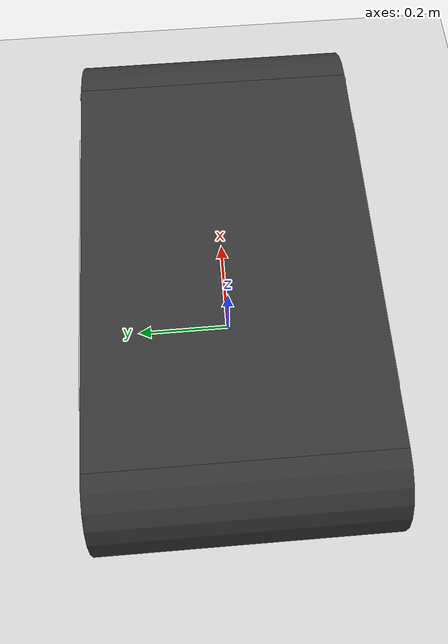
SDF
<?xml version="1.0" ?>
<sdf version="1.6">
    <world name="default">
        <include>
            <uri>model://ground_plane</uri>
        </include>

        <!-- Global light source -->
        <include>
            <uri>model://sun</uri>
        </include>

        <!-- Example track -->
        <include>
            <uri>model://example_track</uri>
            <pose>0 0 0.3 0 0 0</pose>
        </include>

        <!-- Rigid anchor for the track -->

        <!-- camera angle -->
        <gui fullscreen='0'>
            <camera name='user_camera'>
                <pose>2.0 -1.5 1.0 0.0 0.3 2.45</pose>
                <view_controller>orbit</view_controller>
            </camera>
        </gui>
    </world>
</sdf>

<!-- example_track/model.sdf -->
<sdf version='1.6'>
  <model name='example_track'>
    <link name='body'>
      <pose frame=''>0 0 0 0 -0 0</pose>
      <inertial>
        <pose frame=''>-0.058333 0 0 0 -0 0</pose>
        <mass>1.2</mass>
        <inertia>
          <ixx>0.0296633</ixx>
          <ixy>0</ixy>
          <ixz>0</ixz>
          <iyy>0.0452233</iyy>
          <iyz>0</iyz>
          <izz>0.06758</izz>
        </inertia>
      </inertial>
      <collision name='body_collision'>
        <pose frame=''>0 0 0 0 -0 0</pose>
        <geometry>
          <box>
            <size>0.51 0.5 0.2</size>
          </box>
        </geometry>
      </collision>
      <collision name='body_fixed_joint_lump__idler_collision_1'>
        <pose frame=''>-0.35 0 0 1.5708 -0 0</pose>
        <geometry>
          <cylinder>
            <length>0.51</length>
            <radius>0.08</radius>
          </cylinder>
        </geometry>
      </collision>
      <visual name='body_visual'>
        <pose frame=''>0 0 0 0 -0 0</pose>
        <geometry>
          <box>
            <size>0.5 0.51 0.2</size>
          </box>
        </geometry>
      </visual>
      <visual name='body_fixed_joint_lump__idler_visual_1'>
        <pose frame=''>-0.35 0 0 1.5708 -0 0</pose>
        <geometry>
          <cylinder>
            <length>0.51</length>
            <radius>0.08</radius>
          </cylinder>
        </geometry>
      </visual>
    </link>
    <link name='sprocket'>
      <pose frame=''>0.35 0 0 0 -0 0</pose>
      <inertial>
        <pose frame=''>0 0 0 0 -0 0</pose>
        <mass>0.2</mass>
        <inertia>
          <ixx>0.004655</ixx>
          <ixy>0</ixy>
          <ixz>0</ixz>
          <iyy>0.00064</iyy>
          <iyz>0</iyz>
          <izz>0.004655</izz>
        </inertia>
      </inertial>
      <collision name='sprocket_collision'>
        <pose frame=''>0 0 0 1.5708 -0 0</pose>
        <geometry>
          <cylinder>
            <length>0.51</length>
            <radius>0.08</radius>
          </cylinder>
        </geometry>
      </collision>
      <visual name='sprocket_visual'>
        <pose frame=''>0 0 0 1.5708 -0 0</pose>
        <geometry>
          <cylinder>
            <length>0.51</length>
            <radius>0.08</radius>
          </cylinder>
        </geometry>
      </visual>
      <visual name='sprocket_visual_1'>
        <pose frame=''>0 0 0 0 -0 0</pose>
        <geometry>
          <box>
            <size>0.01 0.51 0.2</size>
          </box>
        </geometry>
      </visual>
      <visual name='sprocket_visual_2'>
        <pose frame=''>0 0 0 0 -0 0</pose>
        <geometry>
          <box>
            <size>0.2 0.51 0.01</size>
          </box>
        </geometry>
      </visual>
    </link>
    <joint name='sprocket_axle' type='revolute'>
      <child>sprocket</child>
      <parent>body</parent>
      <axis>
        <xyz>0 1 0</xyz>
        <limit>
          <lower>-1e+16</lower>
          <upper>1e+16</upper>
        </limit>
        <dynamics>
          <spring_reference>0</spring_reference>
          <spring_stiffness>0</spring_stiffness>
        </dynamics>
        <use_parent_model_frame>1</use_parent_model_frame>
      </axis>
    </joint>
    <link name='track_straight_segment_link0'>
      <pose frame=''>-0.35 0 0.115 0 -0 0</pose>
      <inertial>
        <pose frame=''>0.35 0 -0.0575 0 -0 0</pose>
        <mass>0.1</mass>
        <inertia>
          <ixx>0.00219354</ixx>
          <ixy>0</ixy>
          <ixz>0</ixz>
          <iyy>0.00419354</iyy>
          <iyz>0</iyz>
          <izz>0.00616667</izz>
        </inertia>
      </inertial>
      <collision name='collision'>
        <pose frame=''>0.35 0 -0.0575 0 -0 0</pose>
        <geometry>
          <box>
            <size>0.7 0.5 0.115</size>
          </box>
        </geometry>
        <surface>
          <friction>
            <ode>
              <mu>0.5</mu>
              <mu2>0.5</mu2>
            </ode>
          </friction>
          <contact>
            <ode>
              <min_depth>0.01</min_depth>
            </ode>
          </contact>
        </surface>
      </collision>
      <visual name='visual'>
        <pose frame=''>0.35 0 -0.0575 0 -0 0</pose>
        <geometry>
          <box>
            <size>0.7 0.5 0.115</size>
          </box>
        </geometry>
        <material>
          <ambient>0.1 0.1 0.3 1</ambient>
          <diffuse>0.2 0.2 0.2 1</diffuse>
          <specular>0 0 0 1</specular>
          <emissive>0 0 0 1</emissive>
        </material>
      </visual>
    </link>
    <link name='track_straight_segment_link1'>
      <pose frame=''>0.35 0 -0.115 3.14159 -0 3.14159</pose>
      <inertial>
        <pose frame=''>0.35 0 -0.0575 0 -0 0</pose>
        <mass>0.1</mass>
        <inertia>
          <ixx>0.00219354</ixx>
          <ixy>0</ixy>
          <ixz>0</ixz>
          <iyy>0.00419354</iyy>
          <iyz>0</iyz>
          <izz>0.00616667</izz>
        </inertia>
      </inertial>
      <collision name='collision'>
        <pose frame=''>0.35 0 -0.0575 0 -0 0</pose>
        <geometry>
          <box>
            <size>0.7 0.5 0.115</size>
          </box>
        </geometry>
        <surface>
          <friction>
            <ode>
              <mu>0.5</mu>
              <mu2>0.5</mu2>
            </ode>
          </friction>
          <contact>
            <ode>
              <min_depth>0.01</min_depth>
            </ode>
          </contact>
        </surface>
      </collision>
      <visual name='visual'>
        <pose frame=''>0.35 0 -0.0575 0 -0 0</pose>
        <geometry>
          <box>
            <size>0.7 0.5 0.115</size>
          </box>
        </geometry>
        <material>
          <ambient>0.1 0.1 0.3 1</ambient>
          <diffuse>0.2 0.2 0.2 1</diffuse>
          <specular>0 0 0 1</specular>
          <emissive>0 0 0 1</emissive>
        </material>
      </visual>
    </link>
    <joint name='track_straight_segment_joint0' type='prismatic'>
      <child>track_straight_segment_link0</child>
      <parent>body</parent>
      <axis>
        <xyz>1 0 0</xyz>
        <use_parent_model_frame>0</use_parent_model_frame>
        <use_parent_model_frame>1</use_parent_model_frame>
        <limit>
          <lower>-1e+16</lower>
          <upper>1e+16</upper>
        </limit>
      </axis>
      <physics>
        <ode>
          <implicit_spring_damper>1</implicit_spring_damper>
        </ode>
      </physics>
    </joint>
    <joint name='track_straight_segment_joint1' type='prismatic'>
      <child>track_straight_segment_link1</child>
      <parent>body</parent>
      <axis>
        <xyz>1 0 0</xyz>
        <use_parent_model_frame>0</use_parent_model_frame>
        <use_parent_model_frame>1</use_parent_model_frame>
        <limit>
          <lower>-1e+16</lower>
          <upper>1e+16</upper>
        </limit>
      </axis>
      <physics>
        <ode>
          <implicit_spring_damper>1</implicit_spring_damper>
        </ode>
      </physics>
    </joint>
    <link name='track_arc_segment_link0'>
      <pose frame=''>0.35 0 0.115 0 -0 0</pose>
      <inertial>
        <pose frame=''>0 0 -0.115 1.5708 -0 0</pose>
        <mass>0.1</mass>
        <inertia>
          <ixx>0.00241396</ixx>
          <ixy>0</ixy>
          <ixz>0</ixz>
          <iyy>0.00241396</iyy>
          <iyz>0</iyz>
          <izz>0.00066125</izz>
        </inertia>
      </inertial>
      <collision name='collision'>
        <pose frame=''>0 0 -0.115 1.5708 -0 0</pose>
        <geometry>
          <cylinder>
            <length>0.5</length>
            <radius>0.115</radius>
          </cylinder>
        </geometry>
        <surface>
          <friction>
            <ode>
              <mu>0.5</mu>
              <mu2>0.5</mu2>
            </ode>
          </friction>
          <contact>
            <ode>
              <min_depth>0.01</min_depth>
            </ode>
          </contact>
        </surface>
      </collision>
      <visual name='visual'>
        <pose frame=''>0 0 -0.115 1.5708 -0 0</pose>
        <geometry>
          <cylinder>
            <length>0.5</length>
            <radius>0.115</radius>
          </cylinder>
        </geometry>
        <material>
          <ambient>0.1 0.1 0.3 1</ambient>
          <diffuse>0.2 0.2 0.2 1</diffuse>
          <specular>0 0 0 1</specular>
          <emissive>0 0 0 1</emissive>
        </material>
      </visual>
    </link>
    <link name='track_arc_segment_link1'>
      <pose frame=''>-0.35 0 -0.115 3.14159 -0 3.14159</pose>
      <inertial>
        <pose frame=''>0 0 -0.115 1.5708 -0 0</pose>
        <mass>0.1</mass>
        <inertia>
          <ixx>0.00241396</ixx>
          <ixy>0</ixy>
          <ixz>0</ixz>
          <iyy>0.00241396</iyy>
          <iyz>0</iyz>
          <izz>0.00066125</izz>
        </inertia>
      </inertial>
      <collision name='collision'>
        <pose frame=''>0 0 -0.115 1.5708 -0 0</pose>
        <geometry>
          <cylinder>
            <length>0.5</length>
            <radius>0.115</radius>
          </cylinder>
        </geometry>
        <surface>
          <friction>
            <ode>
              <mu>0.5</mu>
              <mu2>0.5</mu2>
            </ode>
          </friction>
          <contact>
            <ode>
              <min_depth>0.01</min_depth>
            </ode>
          </contact>
        </surface>
      </collision>
      <visual name='visual'>
        <pose frame=''>0 0 -0.115 1.5708 -0 0</pose>
        <geometry>
          <cylinder>
            <length>0.5</length>
            <radius>0.115</radius>
          </cylinder>
        </geometry>
        <material>
          <ambient>0.1 0.1 0.3 1</ambient>
          <diffuse>0.2 0.2 0.2 1</diffuse>
          <specular>0 0 0 1</specular>
          <emissive>0 0 0 1</emissive>
        </material>
      </visual>
    </link>
    <joint name='track_arc_segment_joint0' type='revolute'>
      <child>track_arc_segment_link0</child>
      <parent>body</parent>
      <pose frame=''>0 0 -0.115 0 -0 0</pose>
      <axis>
        <xyz>0 1 0</xyz>
        <use_parent_model_frame>0</use_parent_model_frame>
        <use_parent_model_frame>1</use_parent_model_frame>
        <limit>
          <lower>-1e+16</lower>
          <upper>1e+16</upper>
        </limit>
      </axis>
      <physics>
        <ode>
          <implicit_spring_damper>1</implicit_spring_damper>
        </ode>
      </physics>
    </joint>
    <joint name='track_arc_segment_joint1' type='revolute'>
      <child>track_arc_segment_link1</child>
      <parent>body</parent>
      <pose frame=''>0 0 -0.115 0 -0 0</pose>
      <axis>
        <xyz>0 1 0</xyz>
        <use_parent_model_frame>0</use_parent_model_frame>
        <use_parent_model_frame>1</use_parent_model_frame>
        <limit>
          <lower>-1e+16</lower>
          <upper>1e+16</upper>
        </limit>
      </axis>
      <physics>
        <ode>
          <implicit_spring_damper>1</implicit_spring_damper>
        </ode>
      </physics>
    </joint>
    <plugin name='track' filename='libContinuousTrack.so'>
      <sprocket>
        <joint>sprocket_axle</joint>
        <pitch_diameter>0.24</pitch_diameter>
      </sprocket>
      <trajectory>
        <segment>
          <joint>track_straight_segment_joint0</joint>
          <end_position>0.7</end_position>
        </segment>
        <segment>
          <joint>track_arc_segment_joint0</joint>
          <end_position>3.14159265359</end_position>
        </segment>
        <segment>
          <joint>track_straight_segment_joint1</joint>
          <end_position>0.7</end_position>
        </segment>
        <segment>
          <joint>track_arc_segment_joint1</joint>
          <end_position>3.14159265359</end_position>
        </segment>
      </trajectory>
      <pattern>
        <elements_per_round>40</elements_per_round>
        <element>
          <collision name='collision'>
            <pose>0 0 0 0 0 0</pose>
            <geometry>
              <box>
                <size>0.02 0.5 0.02</size>
              </box>
            </geometry>
            <surface>
              <friction>
                <ode>
                  <mu>0.5</mu>
                  <mu2>0.5</mu2>
                </ode>
              </friction>
              <contact>
                <ode>
                  <min_depth>0.01</min_depth>
                </ode>
              </contact>
            </surface>
          </collision>
          <visual name='visual'>
            <pose>0 0 0 0 0 0</pose>
            <geometry>
              <box>
                <size>0.02 0.5 0.02</size>
              </box>
            </geometry>
            <material>
              <ambient>0.1 0.1 0.3 1</ambient>
              <diffuse>0.2 0.2 0.2 1</diffuse>
              <specular>0 0 0 1</specular>
              <emissive>0 0 0 1</emissive>
            </material>
          </visual>
        </element>
        <element>
          <collision name='collision'>
            <pose>0 0.25 0 1.57079632679 0 0</pose>
            <geometry>
              <polyline>
                <point>-0.02 -0.01</point>
                <point>-0.01 0.01</point>
                <point>0.01 0.01</point>
                <point>0.02 -0.01</point>
                <height>0.5</height>
              </polyline>
            </geometry>
            <surface>
              <friction>
                <ode>
                  <mu>0.5</mu>
                  <mu2>0.5</mu2>
                </ode>
              </friction>
              <contact>
                <ode>
                  <min_depth>0.01</min_depth>
                </ode>
              </contact>
            </surface>
          </collision>
          <visual name='visual'>
            <pose>0 0.25 0 1.57079632679 0 0</pose>
            <geometry>
              <polyline>
                <point>-0.02 -0.01</point>
                <point>-0.01 0.01</point>
                <point>0.01 0.01</point>
                <point>0.02 -0.01</point>
                <height>0.5</height>
              </polyline>
            </geometry>
            <material>
              <ambient>0.1 0.1 0.3 1</ambient>
              <diffuse>0.2 0.2 0.2 1</diffuse>
              <specular>0 0 0 1</specular>
              <emissive>0 0 0 1</emissive>
            </material>
          </visual>
        </element>
      </pattern>
    </plugin>
    <static>0</static>
    <plugin name='gazebo_ros_control' filename='libgazebo_ros_control.so'>
      <robotSimType>gazebo_ros_control/DefaultRobotHWSim</robotSimType>
      <legacyModeNS>false</legacyModeNS>
    </plugin>
  </model>
</sdf>
